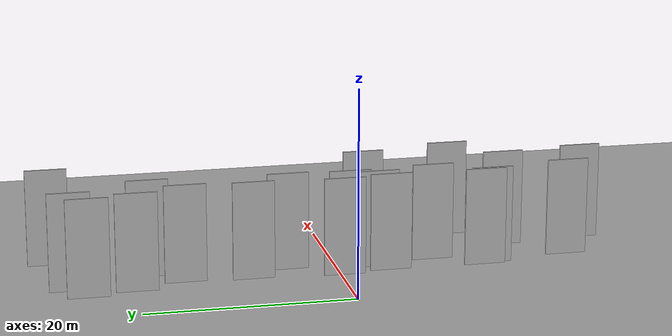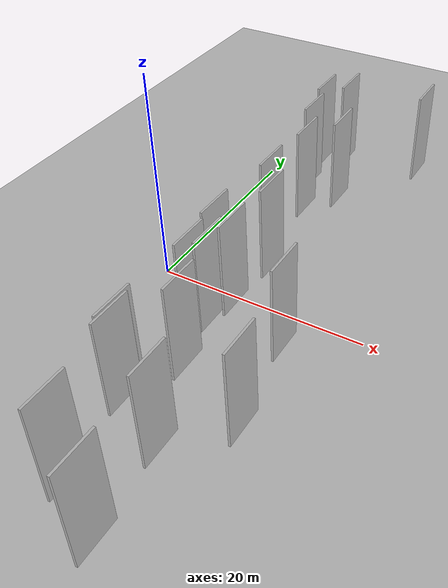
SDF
<?xml version="1.0" encoding="utf-8"?>

<sdf version="1.6">

   <world name="default">

      <gui fullscreen="0">

         <camera name="user_camera">

            <pose>-15 0 4.57585 0 0 0</pose>

            <view_controller>orbit</view_controller>

         </camera>

      </gui>

      <scene>

         <sky>

           <clouds>

             <speed>12</speed>

           </clouds>

         </sky>

         <ambient>0.4 0.4 0.4 1</ambient>

         <background>0.7 0.7 0.7 1</background>

         <shadows>1</shadows>

      </scene>

      <gravity>0 0 -9.8066</gravity>

      <magnetic_field>6e-06 2.3e-05 -4.2e-05</magnetic_field>

      <physics default="0" name="default_physics" type="ode">

         <ode>

            <solver>

               <type>quick</type>

               <iters>10</iters>

               <sor>1.0</sor>

               <use_dynamic_moi_rescaling>0</use_dynamic_moi_rescaling>

            </solver>

            <constraints>

               <cfm>0</cfm>

               <erp>0.2</erp>

               <contact_max_correcting_vel>100</contact_max_correcting_vel>

               <contact_surface_layer>0.001</contact_surface_layer>

            </constraints>

         </ode>

         <max_step_size>0.004</max_step_size>

         <real_time_factor>1</real_time_factor>

         <real_time_update_rate>250</real_time_update_rate>

      </physics>

      <light name="sun" type="directional">

         <cast_shadows>1</cast_shadows>

         <pose>0 0 10 0 0 0</pose>

         <diffuse>0.8 0.8 0.8 1</diffuse>

         <specular>0.2 0.2 0.2 1</specular>

         <attenuation>

            <range>1000</range>

            <constant>0.9</constant>

            <linear>0.01</linear>

            <quadratic>0.001</quadratic>

         </attenuation>

         <direction>-0.5 0.1 -0.9</direction>

      </light>

      <include>

         <name>ground_plane_1</name>

         <uri>model://HANNAS_ground_plane</uri>

         <pose>0 0 0  0 0 0</pose>

      </include>

      <include>

         <name>ground_plane_2</name>

         <uri>model://HANNAS_ground_plane</uri>

         <pose>100 0 0  0 0 0</pose>

      </include>

      <model name="HANNAS_wall_1">

         <static>1</static>

         <pose frame="">14.4835 -3.7706 0.0 0.000000 0.000000 1.570796</pose>

         <link name="link">

            <pose frame="">0 0 5.00 0 0 0</pose>

            <collision name="collision">

               <geometry>

                  <box>

                     <size>4.00 0.2 10.00</size>

                  </box>

               </geometry>

               <max_contacts>10</max_contacts>

               <surface>

                  <contact>

                     <ode/>

                  </contact>

                  <bounce/>

                  <friction>

                     <torsional>

                        <ode/>

                     </torsional>

                     <ode/>

                  </friction>

               </surface>

            </collision>

            <visual name="visual">

               <cast_shadows>0</cast_shadows>

               <geometry>

                  <box>

                     <size>4.00 0.2 10.00</size>

                  </box>

               </geometry>

               <material>

                  <script>

                     <uri>model://HANNAS_wall/materials/scripts</uri>

                     <uri>model://HANNAS_wall/materials/textures</uri>

                     <name>vrc/HANNAS_wall</name>

                  </script>

               </material>

            </visual>

            <self_collide>0</self_collide>

            <enable_wind>0</enable_wind>

            <kinematic>0</kinematic>

         </link>

      </model>

      <model name="HANNAS_wall_2">

         <static>1</static>

         <pose frame="">4.2419 24.3647 0.0 0.000000 0.000000 1.570796</pose>

         <link name="link">

            <pose frame="">0 0 5.00 0 0 0</pose>

            <collision name="collision">

               <geometry>

                  <box>

                     <size>4.00 0.2 10.00</size>

                  </box>

               </geometry>

               <max_contacts>10</max_contacts>

               <surface>

                  <contact>

                     <ode/>

                  </contact>

                  <bounce/>

                  <friction>

                     <torsional>

                        <ode/>

                     </torsional>

                     <ode/>

                  </friction>

               </surface>

            </collision>

            <visual name="visual">

               <cast_shadows>0</cast_shadows>

               <geometry>

                  <box>

                     <size>4.00 0.2 10.00</size>

                  </box>

               </geometry>

               <material>

                  <script>

                     <uri>model://HANNAS_wall/materials/scripts</uri>

                     <uri>model://HANNAS_wall/materials/textures</uri>

                     <name>vrc/HANNAS_wall</name>

                  </script>

               </material>

            </visual>

            <self_collide>0</self_collide>

            <enable_wind>0</enable_wind>

            <kinematic>0</kinematic>

         </link>

      </model>

      <model name="HANNAS_wall_3">

         <static>1</static>

         <pose frame="">8.4709 4.9242 0.0 0.000000 0.000000 1.570796</pose>

         <link name="link">

            <pose frame="">0 0 5.00 0 0 0</pose>

            <collision name="collision">

               <geometry>

                  <box>

                     <size>4.00 0.2 10.00</size>

                  </box>

               </geometry>

               <max_contacts>10</max_contacts>

               <surface>

                  <contact>

                     <ode/>

                  </contact>

                  <bounce/>

                  <friction>

                     <torsional>

                        <ode/>

                     </torsional>

                     <ode/>

                  </friction>

               </surface>

            </collision>

            <visual name="visual">

               <cast_shadows>0</cast_shadows>

               <geometry>

                  <box>

                     <size>4.00 0.2 10.00</size>

                  </box>

               </geometry>

               <material>

                  <script>

                     <uri>model://HANNAS_wall/materials/scripts</uri>

                     <uri>model://HANNAS_wall/materials/textures</uri>

                     <name>vrc/HANNAS_wall</name>

                  </script>

               </material>

            </visual>

            <self_collide>0</self_collide>

            <enable_wind>0</enable_wind>

            <kinematic>0</kinematic>

         </link>

      </model>

      <model name="HANNAS_wall_4">

         <static>1</static>

         <pose frame="">6.3577 8.5996 0.0 0.000000 0.000000 1.570796</pose>

         <link name="link">

            <pose frame="">0 0 5.00 0 0 0</pose>

            <collision name="collision">

               <geometry>

                  <box>

                     <size>4.00 0.2 10.00</size>

                  </box>

               </geometry>

               <max_contacts>10</max_contacts>

               <surface>

                  <contact>

                     <ode/>

                  </contact>

                  <bounce/>

                  <friction>

                     <torsional>

                        <ode/>

                     </torsional>

                     <ode/>

                  </friction>

               </surface>

            </collision>

            <visual name="visual">

               <cast_shadows>0</cast_shadows>

               <geometry>

                  <box>

                     <size>4.00 0.2 10.00</size>

                  </box>

               </geometry>

               <material>

                  <script>

                     <uri>model://HANNAS_wall/materials/scripts</uri>

                     <uri>model://HANNAS_wall/materials/textures</uri>

                     <name>vrc/HANNAS_wall</name>

                  </script>

               </material>

            </visual>

            <self_collide>0</self_collide>

            <enable_wind>0</enable_wind>

            <kinematic>0</kinematic>

         </link>

      </model>

      <model name="HANNAS_wall_5">

         <static>1</static>

         <pose frame="">8.1315 -1.0500 0.0 0.000000 0.000000 1.570796</pose>

         <link name="link">

            <pose frame="">0 0 5.00 0 0 0</pose>

            <collision name="collision">

               <geometry>

                  <box>

                     <size>4.00 0.2 10.00</size>

                  </box>

               </geometry>

               <max_contacts>10</max_contacts>

               <surface>

                  <contact>

                     <ode/>

                  </contact>

                  <bounce/>

                  <friction>

                     <torsional>

                        <ode/>

                     </torsional>

                     <ode/>

                  </friction>

               </surface>

            </collision>

            <visual name="visual">

               <cast_shadows>0</cast_shadows>

               <geometry>

                  <box>

                     <size>4.00 0.2 10.00</size>

                  </box>

               </geometry>

               <material>

                  <script>

                     <uri>model://HANNAS_wall/materials/scripts</uri>

                     <uri>model://HANNAS_wall/materials/textures</uri>

                     <name>vrc/HANNAS_wall</name>

                  </script>

               </material>

            </visual>

            <self_collide>0</self_collide>

            <enable_wind>0</enable_wind>

            <kinematic>0</kinematic>

         </link>

      </model>

      <model name="HANNAS_wall_6">

         <static>1</static>

         <pose frame="">8.6236 -9.3073 0.0 0.000000 0.000000 1.570796</pose>

         <link name="link">

            <pose frame="">0 0 5.00 0 0 0</pose>

            <collision name="collision">

               <geometry>

                  <box>

                     <size>4.00 0.2 10.00</size>

                  </box>

               </geometry>

               <max_contacts>10</max_contacts>

               <surface>

                  <contact>

                     <ode/>

                  </contact>

                  <bounce/>

                  <friction>

                     <torsional>

                        <ode/>

                     </torsional>

                     <ode/>

                  </friction>

               </surface>

            </collision>

            <visual name="visual">

               <cast_shadows>0</cast_shadows>

               <geometry>

                  <box>

                     <size>4.00 0.2 10.00</size>

                  </box>

               </geometry>

               <material>

                  <script>

                     <uri>model://HANNAS_wall/materials/scripts</uri>

                     <uri>model://HANNAS_wall/materials/textures</uri>

                     <name>vrc/HANNAS_wall</name>

                  </script>

               </material>

            </visual>

            <self_collide>0</self_collide>

            <enable_wind>0</enable_wind>

            <kinematic>0</kinematic>

         </link>

      </model>

      <model name="HANNAS_wall_7">

         <static>1</static>

         <pose frame="">6.7462 14.9992 0.0 0.000000 0.000000 1.570796</pose>

         <link name="link">

            <pose frame="">0 0 5.00 0 0 0</pose>

            <collision name="collision">

               <geometry>

                  <box>

                     <size>4.00 0.2 10.00</size>

                  </box>

               </geometry>

               <max_contacts>10</max_contacts>

               <surface>

                  <contact>

                     <ode/>

                  </contact>

                  <bounce/>

                  <friction>

                     <torsional>

                        <ode/>

                     </torsional>

                     <ode/>

                  </friction>

               </surface>

            </collision>

            <visual name="visual">

               <cast_shadows>0</cast_shadows>

               <geometry>

                  <box>

                     <size>4.00 0.2 10.00</size>

                  </box>

               </geometry>

               <material>

                  <script>

                     <uri>model://HANNAS_wall/materials/scripts</uri>

                     <uri>model://HANNAS_wall/materials/textures</uri>

                     <name>vrc/HANNAS_wall</name>

                  </script>

               </material>

            </visual>

            <self_collide>0</self_collide>

            <enable_wind>0</enable_wind>

            <kinematic>0</kinematic>

         </link>

      </model>

      <model name="HANNAS_wall_8">

         <static>1</static>

         <pose frame="">6.3653 25.8315 0.0 0.000000 0.000000 1.570796</pose>

         <link name="link">

            <pose frame="">0 0 5.00 0 0 0</pose>

            <collision name="collision">

               <geometry>

                  <box>

                     <size>4.00 0.2 10.00</size>

                  </box>

               </geometry>

               <max_contacts>10</max_contacts>

               <surface>

                  <contact>

                     <ode/>

                  </contact>

                  <bounce/>

                  <friction>

                     <torsional>

                        <ode/>

                     </torsional>

                     <ode/>

                  </friction>

               </surface>

            </collision>

            <visual name="visual">

               <cast_shadows>0</cast_shadows>

               <geometry>

                  <box>

                     <size>4.00 0.2 10.00</size>

                  </box>

               </geometry>

               <material>

                  <script>

                     <uri>model://HANNAS_wall/materials/scripts</uri>

                     <uri>model://HANNAS_wall/materials/textures</uri>

                     <name>vrc/HANNAS_wall</name>

                  </script>

               </material>

            </visual>

            <self_collide>0</self_collide>

            <enable_wind>0</enable_wind>

            <kinematic>0</kinematic>

         </link>

      </model>

      <model name="HANNAS_wall_9">

         <static>1</static>

         <pose frame="">15.9297 -12.6422 0.0 0.000000 0.000000 1.570796</pose>

         <link name="link">

            <pose frame="">0 0 5.00 0 0 0</pose>

            <collision name="collision">

               <geometry>

                  <box>

                     <size>4.00 0.2 10.00</size>

                  </box>

               </geometry>

               <max_contacts>10</max_contacts>

               <surface>

                  <contact>

                     <ode/>

                  </contact>

                  <bounce/>

                  <friction>

                     <torsional>

                        <ode/>

                     </torsional>

                     <ode/>

                  </friction>

               </surface>

            </collision>

            <visual name="visual">

               <cast_shadows>0</cast_shadows>

               <geometry>

                  <box>

                     <size>4.00 0.2 10.00</size>

                  </box>

               </geometry>

               <material>

                  <script>

                     <uri>model://HANNAS_wall/materials/scripts</uri>

                     <uri>model://HANNAS_wall/materials/textures</uri>

                     <name>vrc/HANNAS_wall</name>

                  </script>

               </material>

            </visual>

            <self_collide>0</self_collide>

            <enable_wind>0</enable_wind>

            <kinematic>0</kinematic>

         </link>

      </model>

      <model name="HANNAS_wall_10">

         <static>1</static>

         <pose frame="">6.1259 -13.8811 0.0 0.000000 0.000000 1.570796</pose>

         <link name="link">

            <pose frame="">0 0 5.00 0 0 0</pose>

            <collision name="collision">

               <geometry>

                  <box>

                     <size>4.00 0.2 10.00</size>

                  </box>

               </geometry>

               <max_contacts>10</max_contacts>

               <surface>

                  <contact>

                     <ode/>

                  </contact>

                  <bounce/>

                  <friction>

                     <torsional>

                        <ode/>

                     </torsional>

                     <ode/>

                  </friction>

               </surface>

            </collision>

            <visual name="visual">

               <cast_shadows>0</cast_shadows>

               <geometry>

                  <box>

                     <size>4.00 0.2 10.00</size>

                  </box>

               </geometry>

               <material>

                  <script>

                     <uri>model://HANNAS_wall/materials/scripts</uri>

                     <uri>model://HANNAS_wall/materials/textures</uri>

                     <name>vrc/HANNAS_wall</name>

                  </script>

               </material>

            </visual>

            <self_collide>0</self_collide>

            <enable_wind>0</enable_wind>

            <kinematic>0</kinematic>

         </link>

      </model>

      <model name="HANNAS_wall_11">

         <static>1</static>

         <pose frame="">6.4579 -14.5837 0.0 0.000000 0.000000 1.570796</pose>

         <link name="link">

            <pose frame="">0 0 5.00 0 0 0</pose>

            <collision name="collision">

               <geometry>

                  <box>

                     <size>4.00 0.2 10.00</size>

                  </box>

               </geometry>

               <max_contacts>10</max_contacts>

               <surface>

                  <contact>

                     <ode/>

                  </contact>

                  <bounce/>

                  <friction>

                     <torsional>

                        <ode/>

                     </torsional>

                     <ode/>

                  </friction>

               </surface>

            </collision>

            <visual name="visual">

               <cast_shadows>0</cast_shadows>

               <geometry>

                  <box>

                     <size>4.00 0.2 10.00</size>

                  </box>

               </geometry>

               <material>

                  <script>

                     <uri>model://HANNAS_wall/materials/scripts</uri>

                     <uri>model://HANNAS_wall/materials/textures</uri>

                     <name>vrc/HANNAS_wall</name>

                  </script>

               </material>

            </visual>

            <self_collide>0</self_collide>

            <enable_wind>0</enable_wind>

            <kinematic>0</kinematic>

         </link>

      </model>

      <model name="HANNAS_wall_12">

         <static>1</static>

         <pose frame="">8.9955 18.2518 0.0 0.000000 0.000000 1.570796</pose>

         <link name="link">

            <pose frame="">0 0 5.00 0 0 0</pose>

            <collision name="collision">

               <geometry>

                  <box>

                     <size>4.00 0.2 10.00</size>

                  </box>

               </geometry>

               <max_contacts>10</max_contacts>

               <surface>

                  <contact>

                     <ode/>

                  </contact>

                  <bounce/>

                  <friction>

                     <torsional>

                        <ode/>

                     </torsional>

                     <ode/>

                  </friction>

               </surface>

            </collision>

            <visual name="visual">

               <cast_shadows>0</cast_shadows>

               <geometry>

                  <box>

                     <size>4.00 0.2 10.00</size>

                  </box>

               </geometry>

               <material>

                  <script>

                     <uri>model://HANNAS_wall/materials/scripts</uri>

                     <uri>model://HANNAS_wall/materials/textures</uri>

                     <name>vrc/HANNAS_wall</name>

                  </script>

               </material>

            </visual>

            <self_collide>0</self_collide>

            <enable_wind>0</enable_wind>

            <kinematic>0</kinematic>

         </link>

      </model>

      <model name="HANNAS_wall_13">

         <static>1</static>

         <pose frame="">11.6406 -17.1430 0.0 0.000000 0.000000 1.570796</pose>

         <link name="link">

            <pose frame="">0 0 5.00 0 0 0</pose>

            <collision name="collision">

               <geometry>

                  <box>

                     <size>4.00 0.2 10.00</size>

                  </box>

               </geometry>

               <max_contacts>10</max_contacts>

               <surface>

                  <contact>

                     <ode/>

                  </contact>

                  <bounce/>

                  <friction>

                     <torsional>

                        <ode/>

                     </torsional>

                     <ode/>

                  </friction>

               </surface>

            </collision>

            <visual name="visual">

               <cast_shadows>0</cast_shadows>

               <geometry>

                  <box>

                     <size>4.00 0.2 10.00</size>

                  </box>

               </geometry>

               <material>

                  <script>

                     <uri>model://HANNAS_wall/materials/scripts</uri>

                     <uri>model://HANNAS_wall/materials/textures</uri>

                     <name>vrc/HANNAS_wall</name>

                  </script>

               </material>

            </visual>

            <self_collide>0</self_collide>

            <enable_wind>0</enable_wind>

            <kinematic>0</kinematic>

         </link>

      </model>

      <model name="HANNAS_wall_14">

         <static>1</static>

         <pose frame="">14.3131 27.1955 0.0 0.000000 0.000000 1.570796</pose>

         <link name="link">

            <pose frame="">0 0 5.00 0 0 0</pose>

            <collision name="collision">

               <geometry>

                  <box>

                     <size>4.00 0.2 10.00</size>

                  </box>

               </geometry>

               <max_contacts>10</max_contacts>

               <surface>

                  <contact>

                     <ode/>

                  </contact>

                  <bounce/>

                  <friction>

                     <torsional>

                        <ode/>

                     </torsional>

                     <ode/>

                  </friction>

               </surface>

            </collision>

            <visual name="visual">

               <cast_shadows>0</cast_shadows>

               <geometry>

                  <box>

                     <size>4.00 0.2 10.00</size>

                  </box>

               </geometry>

               <material>

                  <script>

                     <uri>model://HANNAS_wall/materials/scripts</uri>

                     <uri>model://HANNAS_wall/materials/textures</uri>

                     <name>vrc/HANNAS_wall</name>

                  </script>

               </material>

            </visual>

            <self_collide>0</self_collide>

            <enable_wind>0</enable_wind>

            <kinematic>0</kinematic>

         </link>

      </model>

      <model name="HANNAS_wall_15">

         <static>1</static>

         <pose frame="">5.0804 19.7697 0.0 0.000000 0.000000 1.570796</pose>

         <link name="link">

            <pose frame="">0 0 5.00 0 0 0</pose>

            <collision name="collision">

               <geometry>

                  <box>

                     <size>4.00 0.2 10.00</size>

                  </box>

               </geometry>

               <max_contacts>10</max_contacts>

               <surface>

                  <contact>

                     <ode/>

                  </contact>

                  <bounce/>

                  <friction>

                     <torsional>

                        <ode/>

                     </torsional>

                     <ode/>

                  </friction>

               </surface>

            </collision>

            <visual name="visual">

               <cast_shadows>0</cast_shadows>

               <geometry>

                  <box>

                     <size>4.00 0.2 10.00</size>

                  </box>

               </geometry>

               <material>

                  <script>

                     <uri>model://HANNAS_wall/materials/scripts</uri>

                     <uri>model://HANNAS_wall/materials/textures</uri>

                     <name>vrc/HANNAS_wall</name>

                  </script>

               </material>

            </visual>

            <self_collide>0</self_collide>

            <enable_wind>0</enable_wind>

            <kinematic>0</kinematic>

         </link>

      </model>

      <model name="HANNAS_wall_16">

         <static>1</static>

         <pose frame="">6.3404 -4.6513 0.0 0.000000 0.000000 1.570796</pose>

         <link name="link">

            <pose frame="">0 0 5.00 0 0 0</pose>

            <collision name="collision">

               <geometry>

                  <box>

                     <size>4.00 0.2 10.00</size>

                  </box>

               </geometry>

               <max_contacts>10</max_contacts>

               <surface>

                  <contact>

                     <ode/>

                  </contact>

                  <bounce/>

                  <friction>

                     <torsional>

                        <ode/>

                     </torsional>

                     <ode/>

                  </friction>

               </surface>

            </collision>

            <visual name="visual">

               <cast_shadows>0</cast_shadows>

               <geometry>

                  <box>

                     <size>4.00 0.2 10.00</size>

                  </box>

               </geometry>

               <material>

                  <script>

                     <uri>model://HANNAS_wall/materials/scripts</uri>

                     <uri>model://HANNAS_wall/materials/textures</uri>

                     <name>vrc/HANNAS_wall</name>

                  </script>

               </material>

            </visual>

            <self_collide>0</self_collide>

            <enable_wind>0</enable_wind>

            <kinematic>0</kinematic>

         </link>

      </model>

      <model name="HANNAS_wall_17">

         <static>1</static>

         <pose frame="">7.5136 -3.6938 0.0 0.000000 0.000000 1.570796</pose>

         <link name="link">

            <pose frame="">0 0 5.00 0 0 0</pose>

            <collision name="collision">

               <geometry>

                  <box>

                     <size>4.00 0.2 10.00</size>

                  </box>

               </geometry>

               <max_contacts>10</max_contacts>

               <surface>

                  <contact>

                     <ode/>

                  </contact>

                  <bounce/>

                  <friction>

                     <torsional>

                        <ode/>

                     </torsional>

                     <ode/>

                  </friction>

               </surface>

            </collision>

            <visual name="visual">

               <cast_shadows>0</cast_shadows>

               <geometry>

                  <box>

                     <size>4.00 0.2 10.00</size>

                  </box>

               </geometry>

               <material>

                  <script>

                     <uri>model://HANNAS_wall/materials/scripts</uri>

                     <uri>model://HANNAS_wall/materials/textures</uri>

                     <name>vrc/HANNAS_wall</name>

                  </script>

               </material>

            </visual>

            <self_collide>0</self_collide>

            <enable_wind>0</enable_wind>

            <kinematic>0</kinematic>

         </link>

      </model>

      <model name="HANNAS_wall_18">

         <static>1</static>

         <pose frame="">7.5839 -22.4577 0.0 0.000000 0.000000 1.570796</pose>

         <link name="link">

            <pose frame="">0 0 5.00 0 0 0</pose>

            <collision name="collision">

               <geometry>

                  <box>

                     <size>4.00 0.2 10.00</size>

                  </box>

               </geometry>

               <max_contacts>10</max_contacts>

               <surface>

                  <contact>

                     <ode/>

                  </contact>

                  <bounce/>

                  <friction>

                     <torsional>

                        <ode/>

                     </torsional>

                     <ode/>

                  </friction>

               </surface>

            </collision>

            <visual name="visual">

               <cast_shadows>0</cast_shadows>

               <geometry>

                  <box>

                     <size>4.00 0.2 10.00</size>

                  </box>

               </geometry>

               <material>

                  <script>

                     <uri>model://HANNAS_wall/materials/scripts</uri>

                     <uri>model://HANNAS_wall/materials/textures</uri>

                     <name>vrc/HANNAS_wall</name>

                  </script>

               </material>

            </visual>

            <self_collide>0</self_collide>

            <enable_wind>0</enable_wind>

            <kinematic>0</kinematic>

         </link>

      </model>

      <model name="HANNAS_wall_19">

         <static>1</static>

         <pose frame="">12.3964 -25.2359 0.0 0.000000 0.000000 1.570796</pose>

         <link name="link">

            <pose frame="">0 0 5.00 0 0 0</pose>

            <collision name="collision">

               <geometry>

                  <box>

                     <size>4.00 0.2 10.00</size>

                  </box>

               </geometry>

               <max_contacts>10</max_contacts>

               <surface>

                  <contact>

                     <ode/>

                  </contact>

                  <bounce/>

                  <friction>

                     <torsional>

                        <ode/>

                     </torsional>

                     <ode/>

                  </friction>

               </surface>

            </collision>

            <visual name="visual">

               <cast_shadows>0</cast_shadows>

               <geometry>

                  <box>

                     <size>4.00 0.2 10.00</size>

                  </box>

               </geometry>

               <material>

                  <script>

                     <uri>model://HANNAS_wall/materials/scripts</uri>

                     <uri>model://HANNAS_wall/materials/textures</uri>

                     <name>vrc/HANNAS_wall</name>

                  </script>

               </material>

            </visual>

            <self_collide>0</self_collide>

            <enable_wind>0</enable_wind>

            <kinematic>0</kinematic>

         </link>

      </model>

      <model name="HANNAS_wall_20">

         <static>1</static>

         <pose frame="">5.8139 -0.0483 0.0 0.000000 0.000000 1.570796</pose>

         <link name="link">

            <pose frame="">0 0 5.00 0 0 0</pose>

            <collision name="collision">

               <geometry>

                  <box>

                     <size>4.00 0.2 10.00</size>

                  </box>

               </geometry>

               <max_contacts>10</max_contacts>

               <surface>

                  <contact>

                     <ode/>

                  </contact>

                  <bounce/>

                  <friction>

                     <torsional>

                        <ode/>

                     </torsional>

                     <ode/>

                  </friction>

               </surface>

            </collision>

            <visual name="visual">

               <cast_shadows>0</cast_shadows>

               <geometry>

                  <box>

                     <size>4.00 0.2 10.00</size>

                  </box>

               </geometry>

               <material>

                  <script>

                     <uri>model://HANNAS_wall/materials/scripts</uri>

                     <uri>model://HANNAS_wall/materials/textures</uri>

                     <name>vrc/HANNAS_wall</name>

                  </script>

               </material>

            </visual>

            <self_collide>0</self_collide>

            <enable_wind>0</enable_wind>

            <kinematic>0</kinematic>

         </link>

      </model>

   </world>

</sdf>

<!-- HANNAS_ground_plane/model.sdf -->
<sdf version="1.4">
<model name="HANNAS_ground_plane">
  <static>true</static>
    <link name="link">
      <collision name="collision">
        <geometry>
          <plane>
            <normal>0 0 1</normal>
            <size>1000 1000</size>
          </plane>
        </geometry>
        <surface>
          <friction>
            <ode>
              <mu>100</mu>
              <mu2>50</mu2>
            </ode>
          </friction>
        </surface>
      </collision>
      <visual name="visual">
        <cast_shadows>false</cast_shadows>
        <geometry>
          <plane>
            <normal>0 0 1</normal>
            <size>1000 1000</size>
          </plane>
        </geometry>
        <material>
          <script>
            <uri>model://HANNAS_ground_plane/materials/scripts/HANNAS_ground_plane.material</uri>
	    <uri>model://HANNAS_ground_plane/materials/textures</uri>
            <name>HANNASGroundPlane/Image</name>
          </script>
        </material>
      </visual>
    </link>
  </model>
</sdf>
